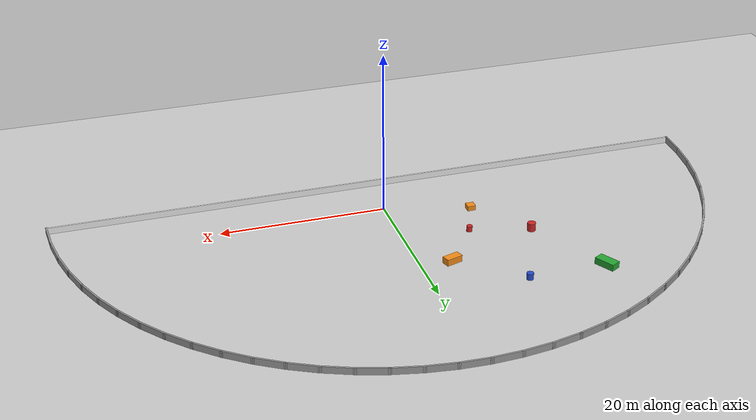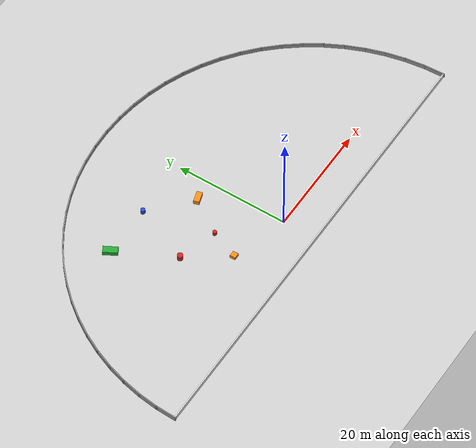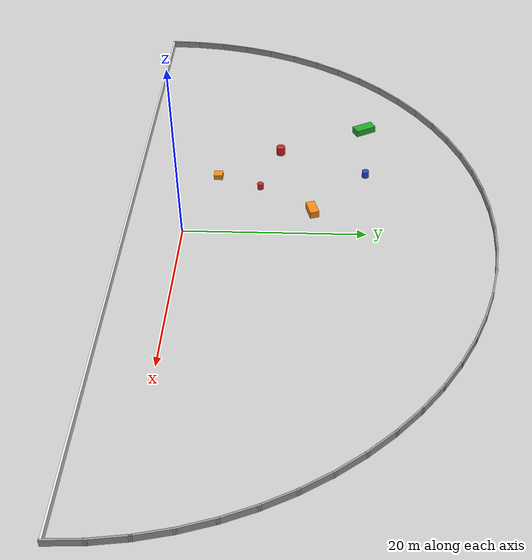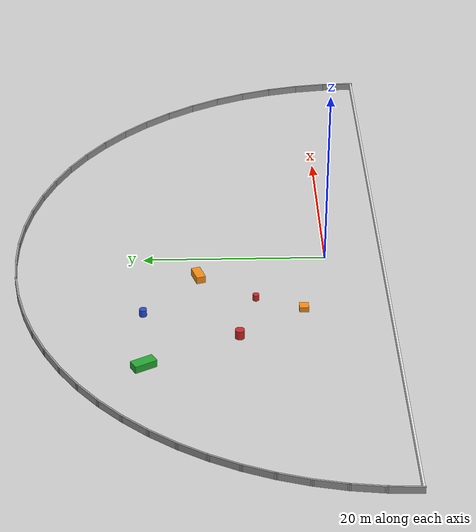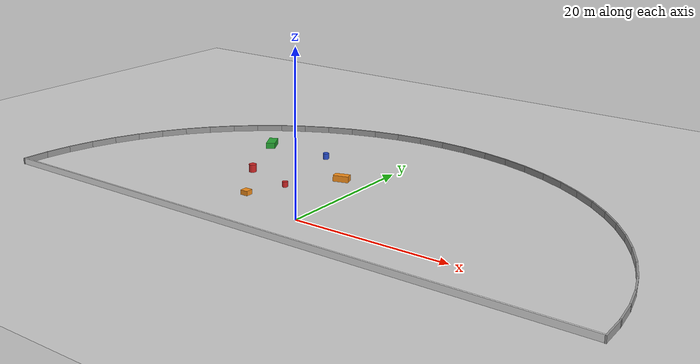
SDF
<sdf version="1.7">
 <world name="sim_world">
  <model name="ground_plane">
   <static>1</static>
   <link name="link">
    <collision name="collision">
     <geometry><plane><normal>0 0 1</normal><size>100 100</size></plane></geometry>
     <surface>
      <contact><collide_bitmask>65535</collide_bitmask></contact>
      <friction><ode><mu>100</mu><mu2>50</mu2></ode></friction>
     </surface>
    </collision>
    <visual name="visual">
     <cast_shadows>0</cast_shadows>
     <geometry><plane><normal>0 0 1</normal><size>100 100</size></plane></geometry>
     <material>
      <script><uri>file://media/materials/scripts/gazebo.material</uri><name>Gazebo/Grey</name></script>
     </material>
    </visual>
   </link>
  </model>
  <model name="semicircle_wall">
   <static>1</static>
   <pose>-0.771129 -6.15482 0 0 -0 0</pose>
   <link name="arc_link">
    <collision name="arc_c_0">
     <pose>39.9619 1.7448 0.4 0 -0 1.6144</pose>
     <geometry><box><size>3.8396 0.2 0.8</size></box></geometry>
    </collision>
    <visual name="arc_v_0">
     <pose>39.9619 1.7448 0.4 0 -0 1.6144</pose>
     <geometry><box><size>3.8396 0.2 0.8</size></box></geometry>
     <material>
      <script><uri>file://media/materials/scripts/gazebo.material</uri><name>Gazebo/Grey</name></script>
     </material>
    </visual>
    <collision name="arc_c_1">
     <pose>39.6578 5.221 0.4 0 -0 1.7017</pose>
     <geometry><box><size>3.8396 0.2 0.8</size></box></geometry>
    </collision>
    <visual name="arc_v_1">
     <pose>39.6578 5.221 0.4 0 -0 1.7017</pose>
     <geometry><box><size>3.8396 0.2 0.8</size></box></geometry>
     <material>
      <script><uri>file://media/materials/scripts/gazebo.material</uri><name>Gazebo/Grey</name></script>
     </material>
    </visual>
    <collision name="arc_c_2">
     <pose>39.0518 8.6576 0.4 0 -0 1.789</pose>
     <geometry><box><size>3.8396 0.2 0.8</size></box></geometry>
    </collision>
    <visual name="arc_v_2">
     <pose>39.0518 8.6576 0.4 0 -0 1.789</pose>
     <geometry><box><size>3.8396 0.2 0.8</size></box></geometry>
     <material>
      <script><uri>file://media/materials/scripts/gazebo.material</uri><name>Gazebo/Grey</name></script>
     </material>
    </visual>
    <collision name="arc_c_3">
     <pose>38.1487 12.0282 0.4 0 -0 1.8762</pose>
     <geometry><box><size>3.8396 0.2 0.8</size></box></geometry>
    </collision>
    <visual name="arc_v_3">
     <pose>38.1487 12.0282 0.4 0 -0 1.8762</pose>
     <geometry><box><size>3.8396 0.2 0.8</size></box></geometry>
     <material>
      <script><uri>file://media/materials/scripts/gazebo.material</uri><name>Gazebo/Grey</name></script>
     </material>
    </visual>
    <collision name="arc_c_4">
     <pose>36.9552 15.3073 0.4 0 -0 1.9635</pose>
     <geometry><box><size>3.8396 0.2 0.8</size></box></geometry>
    </collision>
    <visual name="arc_v_4">
     <pose>36.9552 15.3073 0.4 0 -0 1.9635</pose>
     <geometry><box><size>3.8396 0.2 0.8</size></box></geometry>
     <material>
      <script><uri>file://media/materials/scripts/gazebo.material</uri><name>Gazebo/Grey</name></script>
     </material>
    </visual>
    <collision name="arc_c_5">
     <pose>35.4804 18.4699 0.4 0 -0 2.0508</pose>
     <geometry><box><size>3.8396 0.2 0.8</size></box></geometry>
    </collision>
    <visual name="arc_v_5">
     <pose>35.4804 18.4699 0.4 0 -0 2.0508</pose>
     <geometry><box><size>3.8396 0.2 0.8</size></box></geometry>
     <material>
      <script><uri>file://media/materials/scripts/gazebo.material</uri><name>Gazebo/Grey</name></script>
     </material>
    </visual>
    <collision name="arc_c_6">
     <pose>33.7357 21.492 0.4 0 -0 2.138</pose>
     <geometry><box><size>3.8396 0.2 0.8</size></box></geometry>
    </collision>
    <visual name="arc_v_6">
     <pose>33.7357 21.492 0.4 0 -0 2.138</pose>
     <geometry><box><size>3.8396 0.2 0.8</size></box></geometry>
     <material>
      <script><uri>file://media/materials/scripts/gazebo.material</uri><name>Gazebo/Grey</name></script>
     </material>
    </visual>
    <collision name="arc_c_7">
     <pose>31.7341 24.3505 0.4 0 -0 2.2253</pose>
     <geometry><box><size>3.8396 0.2 0.8</size></box></geometry>
    </collision>
    <visual name="arc_v_7">
     <pose>31.7341 24.3505 0.4 0 -0 2.2253</pose>
     <geometry><box><size>3.8396 0.2 0.8</size></box></geometry>
     <material>
      <script><uri>file://media/materials/scripts/gazebo.material</uri><name>Gazebo/Grey</name></script>
     </material>
    </visual>
    <collision name="arc_c_8">
     <pose>29.4911 27.0236 0.4 0 -0 2.3126</pose>
     <geometry><box><size>3.8396 0.2 0.8</size></box></geometry>
    </collision>
    <visual name="arc_v_8">
     <pose>29.4911 27.0236 0.4 0 -0 2.3126</pose>
     <geometry><box><size>3.8396 0.2 0.8</size></box></geometry>
     <material>
      <script><uri>file://media/materials/scripts/gazebo.material</uri><name>Gazebo/Grey</name></script>
     </material>
    </visual>
    <collision name="arc_c_9">
     <pose>27.0236 29.4911 0.4 0 -0 2.3998</pose>
     <geometry><box><size>3.8396 0.2 0.8</size></box></geometry>
    </collision>
    <visual name="arc_v_9">
     <pose>27.0236 29.4911 0.4 0 -0 2.3998</pose>
     <geometry><box><size>3.8396 0.2 0.8</size></box></geometry>
     <material>
      <script><uri>file://media/materials/scripts/gazebo.material</uri><name>Gazebo/Grey</name></script>
     </material>
    </visual>
    <collision name="arc_c_10">
     <pose>24.3505 31.7341 0.4 0 -0 2.4871</pose>
     <geometry><box><size>3.8396 0.2 0.8</size></box></geometry>
    </collision>
    <visual name="arc_v_10">
     <pose>24.3505 31.7341 0.4 0 -0 2.4871</pose>
     <geometry><box><size>3.8396 0.2 0.8</size></box></geometry>
     <material>
      <script><uri>file://media/materials/scripts/gazebo.material</uri><name>Gazebo/Grey</name></script>
     </material>
    </visual>
    <collision name="arc_c_11">
     <pose>21.492 33.7357 0.4 0 -0 2.5744</pose>
     <geometry><box><size>3.8396 0.2 0.8</size></box></geometry>
    </collision>
    <visual name="arc_v_11">
     <pose>21.492 33.7357 0.4 0 -0 2.5744</pose>
     <geometry><box><size>3.8396 0.2 0.8</size></box></geometry>
     <material>
      <script><uri>file://media/materials/scripts/gazebo.material</uri><name>Gazebo/Grey</name></script>
     </material>
    </visual>
    <collision name="arc_c_12">
     <pose>18.4699 35.4804 0.4 0 -0 2.6616</pose>
     <geometry><box><size>3.8396 0.2 0.8</size></box></geometry>
    </collision>
    <visual name="arc_v_12">
     <pose>18.4699 35.4804 0.4 0 -0 2.6616</pose>
     <geometry><box><size>3.8396 0.2 0.8</size></box></geometry>
     <material>
      <script><uri>file://media/materials/scripts/gazebo.material</uri><name>Gazebo/Grey</name></script>
     </material>
    </visual>
    <collision name="arc_c_13">
     <pose>15.3073 36.9552 0.4 0 -0 2.7489</pose>
     <geometry><box><size>3.8396 0.2 0.8</size></box></geometry>
    </collision>
    <visual name="arc_v_13">
     <pose>15.3073 36.9552 0.4 0 -0 2.7489</pose>
     <geometry><box><size>3.8396 0.2 0.8</size></box></geometry>
     <material>
      <script><uri>file://media/materials/scripts/gazebo.material</uri><name>Gazebo/Grey</name></script>
     </material>
    </visual>
    <collision name="arc_c_14">
     <pose>12.0282 38.1487 0.4 0 -0 2.8362</pose>
     <geometry><box><size>3.8396 0.2 0.8</size></box></geometry>
    </collision>
    <visual name="arc_v_14">
     <pose>12.0282 38.1487 0.4 0 -0 2.8362</pose>
     <geometry><box><size>3.8396 0.2 0.8</size></box></geometry>
     <material>
      <script><uri>file://media/materials/scripts/gazebo.material</uri><name>Gazebo/Grey</name></script>
     </material>
    </visual>
    <collision name="arc_c_15">
     <pose>8.6576 39.0518 0.4 0 -0 2.9234</pose>
     <geometry><box><size>3.8396 0.2 0.8</size></box></geometry>
    </collision>
    <visual name="arc_v_15">
     <pose>8.6576 39.0518 0.4 0 -0 2.9234</pose>
     <geometry><box><size>3.8396 0.2 0.8</size></box></geometry>
     <material>
      <script><uri>file://media/materials/scripts/gazebo.material</uri><name>Gazebo/Grey</name></script>
     </material>
    </visual>
    <collision name="arc_c_16">
     <pose>5.221 39.6578 0.4 0 -0 3.0107</pose>
     <geometry><box><size>3.8396 0.2 0.8</size></box></geometry>
    </collision>
    <visual name="arc_v_16">
     <pose>5.221 39.6578 0.4 0 -0 3.0107</pose>
     <geometry><box><size>3.8396 0.2 0.8</size></box></geometry>
     <material>
      <script><uri>file://media/materials/scripts/gazebo.material</uri><name>Gazebo/Grey</name></script>
     </material>
    </visual>
    <collision name="arc_c_17">
     <pose>1.7448 39.9619 0.4 0 -0 3.098</pose>
     <geometry><box><size>3.8396 0.2 0.8</size></box></geometry>
    </collision>
    <visual name="arc_v_17">
     <pose>1.7448 39.9619 0.4 0 -0 3.098</pose>
     <geometry><box><size>3.8396 0.2 0.8</size></box></geometry>
     <material>
      <script><uri>file://media/materials/scripts/gazebo.material</uri><name>Gazebo/Grey</name></script>
     </material>
    </visual>
    <collision name="arc_c_18">
     <pose>-1.7448 39.9619 0.4 0 -0 -3.09798</pose>
     <geometry><box><size>3.8396 0.2 0.8</size></box></geometry>
    </collision>
    <visual name="arc_v_18">
     <pose>-1.7448 39.9619 0.4 0 -0 -3.09798</pose>
     <geometry><box><size>3.8396 0.2 0.8</size></box></geometry>
     <material>
      <script><uri>file://media/materials/scripts/gazebo.material</uri><name>Gazebo/Grey</name></script>
     </material>
    </visual>
    <collision name="arc_c_19">
     <pose>-5.221 39.6578 0.4 0 -0 -3.01069</pose>
     <geometry><box><size>3.8396 0.2 0.8</size></box></geometry>
    </collision>
    <visual name="arc_v_19">
     <pose>-5.221 39.6578 0.4 0 -0 -3.01069</pose>
     <geometry><box><size>3.8396 0.2 0.8</size></box></geometry>
     <material>
      <script><uri>file://media/materials/scripts/gazebo.material</uri><name>Gazebo/Grey</name></script>
     </material>
    </visual>
    <collision name="arc_c_20">
     <pose>-8.6576 39.0518 0.4 0 -0 -2.92339</pose>
     <geometry><box><size>3.8396 0.2 0.8</size></box></geometry>
    </collision>
    <visual name="arc_v_20">
     <pose>-8.6576 39.0518 0.4 0 -0 -2.92339</pose>
     <geometry><box><size>3.8396 0.2 0.8</size></box></geometry>
     <material>
      <script><uri>file://media/materials/scripts/gazebo.material</uri><name>Gazebo/Grey</name></script>
     </material>
    </visual>
    <collision name="arc_c_21">
     <pose>-12.0282 38.1487 0.4 0 -0 -2.83618</pose>
     <geometry><box><size>3.8396 0.2 0.8</size></box></geometry>
    </collision>
    <visual name="arc_v_21">
     <pose>-12.0282 38.1487 0.4 0 -0 -2.83618</pose>
     <geometry><box><size>3.8396 0.2 0.8</size></box></geometry>
     <material>
      <script><uri>file://media/materials/scripts/gazebo.material</uri><name>Gazebo/Grey</name></script>
     </material>
    </visual>
    <collision name="arc_c_22">
     <pose>-15.3073 36.9552 0.4 0 -0 -2.74889</pose>
     <geometry><box><size>3.8396 0.2 0.8</size></box></geometry>
    </collision>
    <visual name="arc_v_22">
     <pose>-15.3073 36.9552 0.4 0 -0 -2.74889</pose>
     <geometry><box><size>3.8396 0.2 0.8</size></box></geometry>
     <material>
      <script><uri>file://media/materials/scripts/gazebo.material</uri><name>Gazebo/Grey</name></script>
     </material>
    </visual>
    <collision name="arc_c_23">
     <pose>-18.4699 35.4804 0.4 0 -0 -2.66159</pose>
     <geometry><box><size>3.8396 0.2 0.8</size></box></geometry>
    </collision>
    <visual name="arc_v_23">
     <pose>-18.4699 35.4804 0.4 0 -0 -2.66159</pose>
     <geometry><box><size>3.8396 0.2 0.8</size></box></geometry>
     <material>
      <script><uri>file://media/materials/scripts/gazebo.material</uri><name>Gazebo/Grey</name></script>
     </material>
    </visual>
    <collision name="arc_c_24">
     <pose>-21.492 33.7357 0.4 0 -0 -2.57438</pose>
     <geometry><box><size>3.8396 0.2 0.8</size></box></geometry>
    </collision>
    <visual name="arc_v_24">
     <pose>-21.492 33.7357 0.4 0 -0 -2.57438</pose>
     <geometry><box><size>3.8396 0.2 0.8</size></box></geometry>
     <material>
      <script><uri>file://media/materials/scripts/gazebo.material</uri><name>Gazebo/Grey</name></script>
     </material>
    </visual>
    <collision name="arc_c_25">
     <pose>-24.3505 31.7341 0.4 0 -0 -2.48708</pose>
     <geometry><box><size>3.8396 0.2 0.8</size></box></geometry>
    </collision>
    <visual name="arc_v_25">
     <pose>-24.3505 31.7341 0.4 0 -0 -2.48708</pose>
     <geometry><box><size>3.8396 0.2 0.8</size></box></geometry>
     <material>
      <script><uri>file://media/materials/scripts/gazebo.material</uri><name>Gazebo/Grey</name></script>
     </material>
    </visual>
    <collision name="arc_c_26">
     <pose>-27.0236 29.4911 0.4 0 -0 -2.39979</pose>
     <geometry><box><size>3.8396 0.2 0.8</size></box></geometry>
    </collision>
    <visual name="arc_v_26">
     <pose>-27.0236 29.4911 0.4 0 -0 -2.39979</pose>
     <geometry><box><size>3.8396 0.2 0.8</size></box></geometry>
     <material>
      <script><uri>file://media/materials/scripts/gazebo.material</uri><name>Gazebo/Grey</name></script>
     </material>
    </visual>
    <collision name="arc_c_27">
     <pose>-29.4911 27.0236 0.4 0 -0 -2.31258</pose>
     <geometry><box><size>3.8396 0.2 0.8</size></box></geometry>
    </collision>
    <visual name="arc_v_27">
     <pose>-29.4911 27.0236 0.4 0 -0 -2.31258</pose>
     <geometry><box><size>3.8396 0.2 0.8</size></box></geometry>
     <material>
      <script><uri>file://media/materials/scripts/gazebo.material</uri><name>Gazebo/Grey</name></script>
     </material>
    </visual>
    <collision name="arc_c_28">
     <pose>-31.7341 24.3505 0.4 0 -0 -2.22528</pose>
     <geometry><box><size>3.8396 0.2 0.8</size></box></geometry>
    </collision>
    <visual name="arc_v_28">
     <pose>-31.7341 24.3505 0.4 0 -0 -2.22528</pose>
     <geometry><box><size>3.8396 0.2 0.8</size></box></geometry>
     <material>
      <script><uri>file://media/materials/scripts/gazebo.material</uri><name>Gazebo/Grey</name></script>
     </material>
    </visual>
    <collision name="arc_c_29">
     <pose>-33.7357 21.492 0.4 0 -0 -2.13799</pose>
     <geometry><box><size>3.8396 0.2 0.8</size></box></geometry>
    </collision>
    <visual name="arc_v_29">
     <pose>-33.7357 21.492 0.4 0 -0 -2.13799</pose>
     <geometry><box><size>3.8396 0.2 0.8</size></box></geometry>
     <material>
      <script><uri>file://media/materials/scripts/gazebo.material</uri><name>Gazebo/Grey</name></script>
     </material>
    </visual>
    <collision name="arc_c_30">
     <pose>-35.4804 18.4699 0.4 0 -0 -2.05078</pose>
     <geometry><box><size>3.8396 0.2 0.8</size></box></geometry>
    </collision>
    <visual name="arc_v_30">
     <pose>-35.4804 18.4699 0.4 0 -0 -2.05078</pose>
     <geometry><box><size>3.8396 0.2 0.8</size></box></geometry>
     <material>
      <script><uri>file://media/materials/scripts/gazebo.material</uri><name>Gazebo/Grey</name></script>
     </material>
    </visual>
    <collision name="arc_c_31">
     <pose>-36.9552 15.3073 0.4 0 -0 -1.96348</pose>
     <geometry><box><size>3.8396 0.2 0.8</size></box></geometry>
    </collision>
    <visual name="arc_v_31">
     <pose>-36.9552 15.3073 0.4 0 -0 -1.96348</pose>
     <geometry><box><size>3.8396 0.2 0.8</size></box></geometry>
     <material>
      <script><uri>file://media/materials/scripts/gazebo.material</uri><name>Gazebo/Grey</name></script>
     </material>
    </visual>
    <collision name="arc_c_32">
     <pose>-38.1487 12.0282 0.4 0 -0 -1.87618</pose>
     <geometry><box><size>3.8396 0.2 0.8</size></box></geometry>
    </collision>
    <visual name="arc_v_32">
     <pose>-38.1487 12.0282 0.4 0 -0 -1.87618</pose>
     <geometry><box><size>3.8396 0.2 0.8</size></box></geometry>
     <material>
      <script><uri>file://media/materials/scripts/gazebo.material</uri><name>Gazebo/Grey</name></script>
     </material>
    </visual>
    <collision name="arc_c_33">
     <pose>-39.0518 8.6576 0.4 0 -0 -1.78899</pose>
     <geometry><box><size>3.8396 0.2 0.8</size></box></geometry>
    </collision>
    <visual name="arc_v_33">
     <pose>-39.0518 8.6576 0.4 0 -0 -1.78899</pose>
     <geometry><box><size>3.8396 0.2 0.8</size></box></geometry>
     <material>
      <script><uri>file://media/materials/scripts/gazebo.material</uri><name>Gazebo/Grey</name></script>
     </material>
    </visual>
    <collision name="arc_c_34">
     <pose>-39.6578 5.221 0.4 0 -0 -1.70168</pose>
     <geometry><box><size>3.8396 0.2 0.8</size></box></geometry>
    </collision>
    <visual name="arc_v_34">
     <pose>-39.6578 5.221 0.4 0 -0 -1.70168</pose>
     <geometry><box><size>3.8396 0.2 0.8</size></box></geometry>
     <material>
      <script><uri>file://media/materials/scripts/gazebo.material</uri><name>Gazebo/Grey</name></script>
     </material>
    </visual>
    <collision name="arc_c_35">
     <pose>-39.9619 1.7448 0.4 0 -0 -1.61438</pose>
     <geometry><box><size>3.8396 0.2 0.8</size></box></geometry>
    </collision>
    <visual name="arc_v_35">
     <pose>-39.9619 1.7448 0.4 0 -0 -1.61438</pose>
     <geometry><box><size>3.8396 0.2 0.8</size></box></geometry>
     <material>
      <script><uri>file://media/materials/scripts/gazebo.material</uri><name>Gazebo/Grey</name></script>
     </material>
    </visual>
    <collision name="flat_c">
     <pose>0 0 0.4 0 -0 0</pose>
     <geometry><box><size>80 0.2 0.8</size></box></geometry>
    </collision>
    <visual name="flat_v">
     <pose>0 0 0.4 0 -0 0</pose>
     <geometry><box><size>80 0.2 0.8</size></box></geometry>
     <material>
      <script><uri>file://media/materials/scripts/gazebo.material</uri><name>Gazebo/White</name></script>
     </material>
    </visual>
   </link>
  </model>
  <model name="box_central">
   <static>1</static>
   <pose>-3.72043 14.0448 0.4 0 -0 0.3</pose>
   <link name="link">
    <collision name="collision"><geometry><box><size>2 1 0.8</size></box></geometry></collision>
    <visual name="visual">
     <geometry><box><size>2 1 0.8</size></box></geometry>
     <material>
      <script><uri>file://media/materials/scripts/gazebo.material</uri><name>Gazebo/Orange</name></script>
     </material>
    </visual>
   </link>
  </model>
  <model name="cylinder_left1">
   <static>1</static>
   <pose>-15 10 0.5 0 -0 0</pose>
   <link name="link">
    <collision name="collision">
     <geometry><cylinder><radius>0.5</radius><length>1</length></cylinder></geometry>
    </collision>
    <visual name="visual">
     <geometry><cylinder><radius>0.5</radius><length>1</length></cylinder></geometry>
     <material>
      <script><uri>file://media/materials/scripts/gazebo.material</uri><name>Gazebo/Red</name></script>
     </material>
    </visual>
   </link>
  </model>
  <model name="box_left1">
   <static>1</static>
   <pose>-20 20 0.4 0 -0 0.5</pose>
   <link name="link">
    <collision name="collision"><geometry><box><size>1.2 2.5 0.8</size></box></geometry></collision>
    <visual name="visual">
     <geometry><box><size>1.2 2.5 0.8</size></box></geometry>
     <material>
      <script><uri>file://media/materials/scripts/gazebo.material</uri><name>Gazebo/Green</name></script>
     </material>
    </visual>
   </link>
  </model>
  <model name="cylinder_arc1">
   <static>1</static>
   <pose>-10.6726 20.0385 0.4 0 -0 0</pose>
   <link name="link">
    <collision name="collision">
     <geometry><cylinder><radius>0.4</radius><length>0.8</length></cylinder></geometry>
    </collision>
    <visual name="visual">
     <geometry><cylinder><radius>0.4</radius><length>0.8</length></cylinder></geometry>
     <material>
      <script><uri>file://media/materials/scripts/gazebo.material</uri><name>Gazebo/Blue</name></script>
     </material>
    </visual>
   </link>
  </model>
  <model name="box_flat1">
   <static>1</static>
   <pose>-10 3 0.3 0 -0 0</pose>
   <link name="link">
    <collision name="collision"><geometry><box><size>1 1 0.6</size></box></geometry></collision>
    <visual name="visual">
     <geometry><box><size>1 1 0.6</size></box></geometry>
     <material>
      <script><uri>file://media/materials/scripts/gazebo.material</uri><name>Gazebo/Orange</name></script>
     </material>
    </visual>
   </link>
  </model>
  <model name="cyl_scat1">
   <static>1</static>
   <pose>-8 8 0.35 0 -0 0</pose>
   <link name="link">
    <collision name="collision">
     <geometry><cylinder><radius>0.35</radius><length>0.7</length></cylinder></geometry>
    </collision>
    <visual name="visual">
     <geometry><cylinder><radius>0.35</radius><length>0.7</length></cylinder></geometry>
     <material>
      <script><uri>file://media/materials/scripts/gazebo.material</uri><name>Gazebo/Red</name></script>
     </material>
    </visual>
   </link>
  </model>
 </world>
</sdf>
